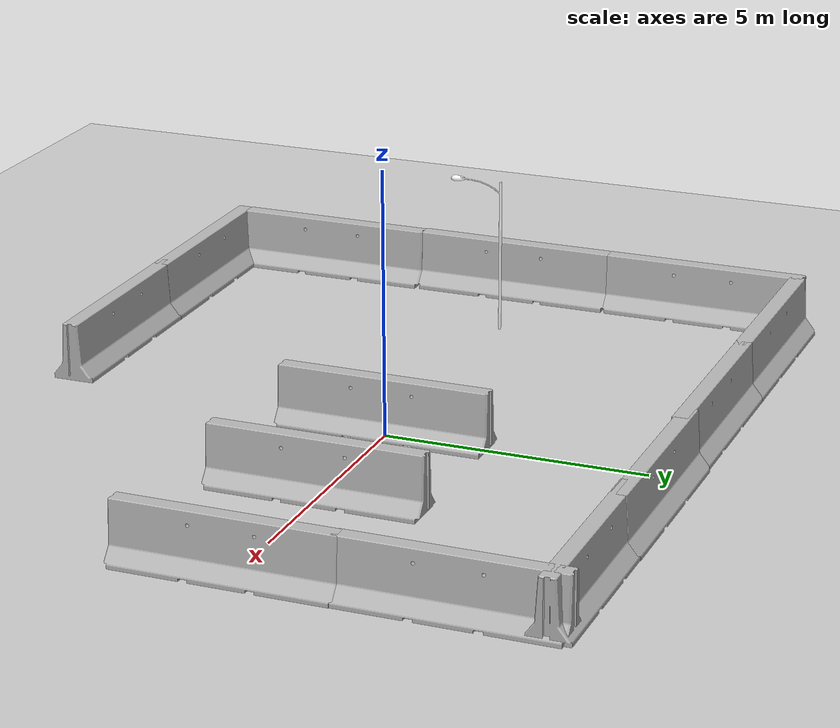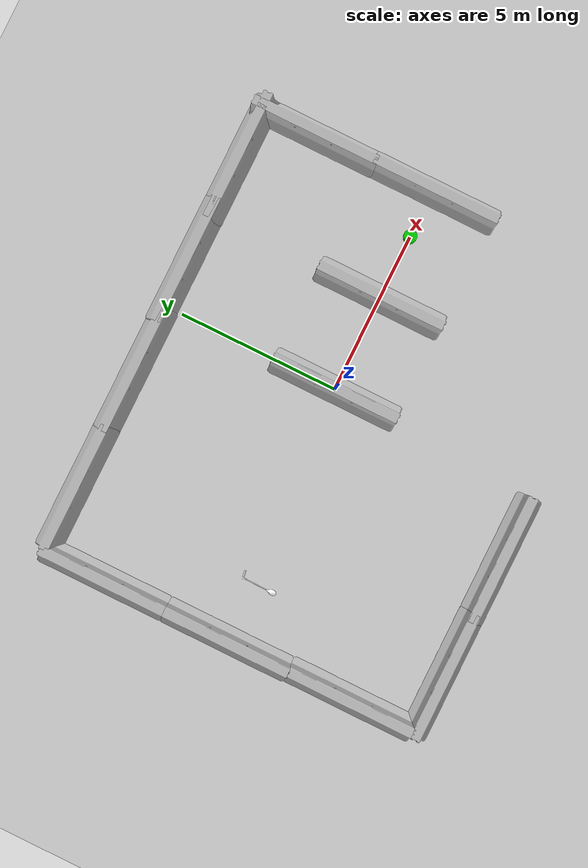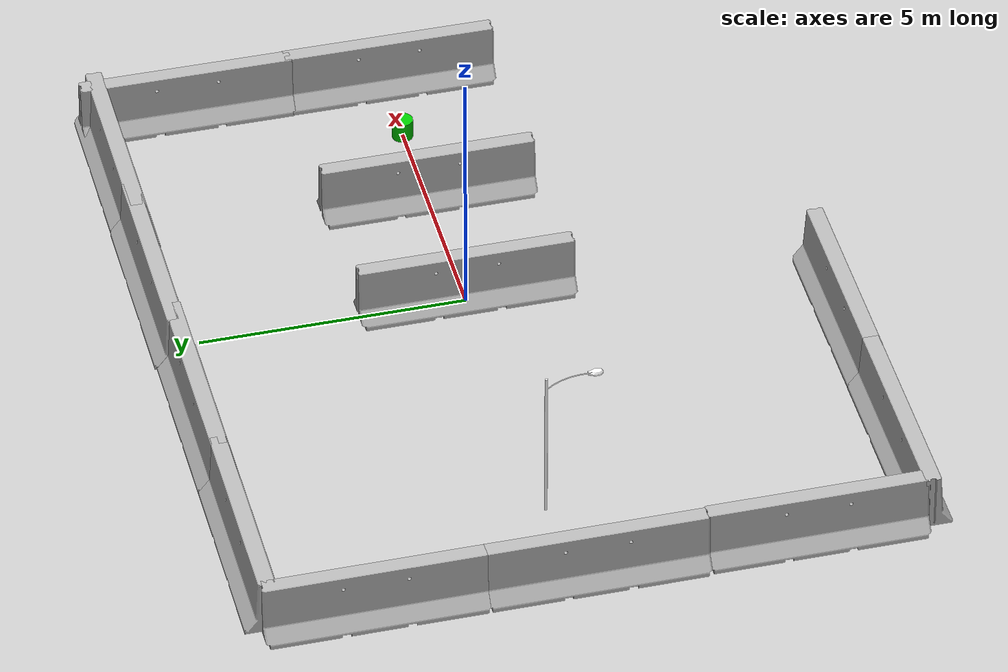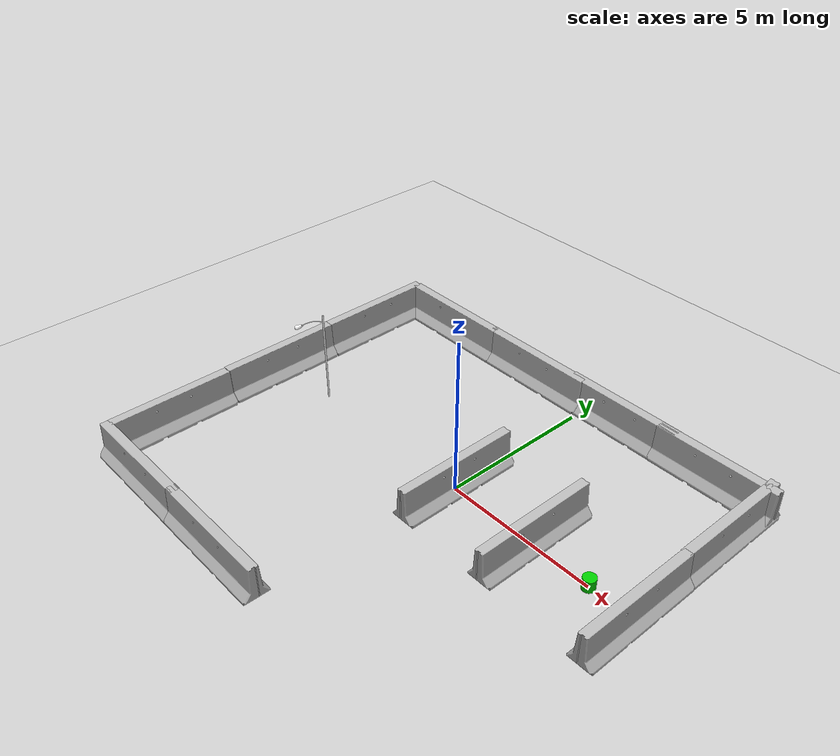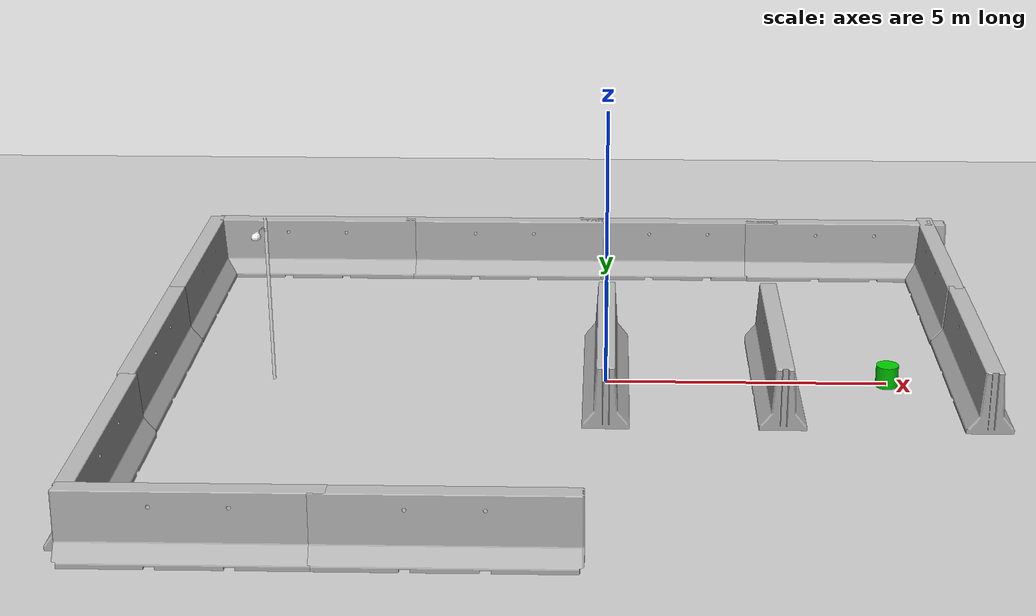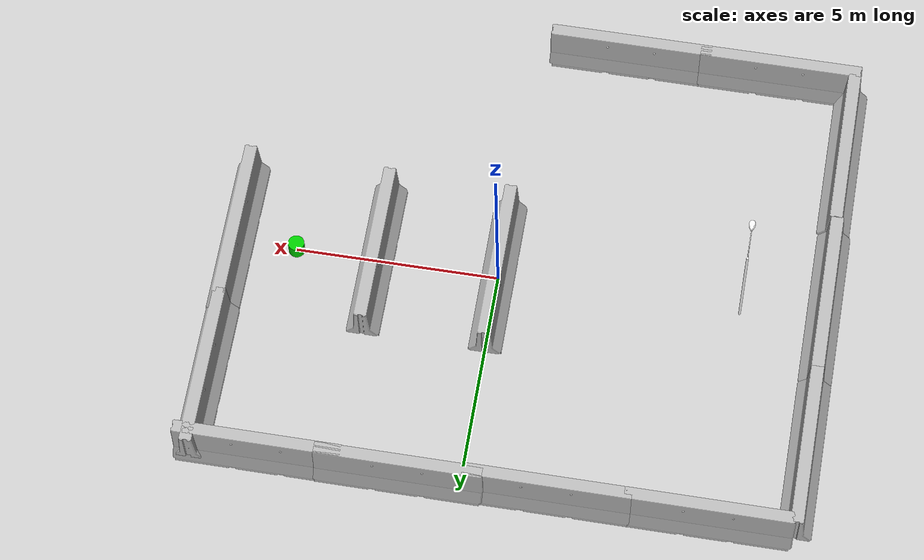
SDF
<sdf version="1.6">
 <world name="default">
  <light name="sun" type="directional">
   <pose>0 0 10 0 -0 0</pose>
   <diffuse>0.8 0.8 0.8 1</diffuse>
   <specular>0.1 0.1 0.1 1</specular>
   <attenuation>
    <range>1000</range>
    <constant>0.9</constant>
    <linear>0.01</linear>
    <quadratic>0.001</quadratic>
   </attenuation>
   <direction>-0.5 0.5 -1</direction>
  </light>
  <model name="ground_plane">
   <static>1</static>
   <link name="link">
    <collision name="collision">
     <geometry><plane><normal>0 0 1</normal><size>100 100</size></plane></geometry>
     <surface><friction><ode><mu>100</mu><mu2>50</mu2></ode></friction></surface>
    </collision>
    <visual name="visual">
     <cast_shadows>0</cast_shadows>
     <geometry><plane><normal>0 0 1</normal><size>100 100</size></plane></geometry>
     <material>
      <script><uri>file://media/materials/scripts/gazebo.material</uri><name>Gazebo/Grey</name></script>
     </material>
    </visual>
   </link>
  </model>
  <gravity>0 0 -9.8</gravity>
  <magnetic_field>6e-06 2.3e-05 -4.2e-05</magnetic_field>
  <atmosphere type="adiabatic"/>
  <physics name="default_physics" default="0" type="ode">
   <max_step_size>0.001</max_step_size>
   <real_time_factor>1</real_time_factor>
   <real_time_update_rate>0</real_time_update_rate>
   <ode>
    <solver><type>quick</type><iters>100</iters><sor>1.0</sor></solver>
    <constraints>
     <cfm>0.0001</cfm>
     <erp>0.2</erp>
     <contact_max_correcting_vel>10.0</contact_max_correcting_vel>
     <contact_surface_layer>0.01</contact_surface_layer>
    </constraints>
   </ode>
  </physics>
  <scene><ambient>0.4 0.4 0.4 1</ambient><background>0.7 0.7 0.7 1</background><shadows>1</shadows></scene>
  <spherical_coordinates>
   <surface_model>EARTH_WGS84</surface_model>
   <latitude_deg>0</latitude_deg>
   <longitude_deg>0</longitude_deg>
   <elevation>0</elevation>
   <heading_deg>0</heading_deg>
  </spherical_coordinates>
  <model name="jersey_barrier">
   <static>1</static>
   <link name="link">
    <visual name="visual">
     <geometry>
      <mesh><uri>model://jersey_barrier/meshes/jersey_barrier.dae</uri><scale>1 1 1</scale></mesh>
     </geometry>
    </visual>
    <collision name="upright">
     <pose>0 0 0.5715 0 -0 0</pose>
     <geometry><box><size>4.06542 0.3063 1.143</size></box></geometry>
    </collision>
    <collision name="base">
     <pose>0 0 0.032258 0 -0 0</pose>
     <geometry><box><size>4.06542 0.8107 0.064516</size></box></geometry>
    </collision>
    <collision name="base2">
     <pose>0 0 0.1 0 -0 0</pose>
     <geometry><box><size>4.06542 0.65 0.1</size></box></geometry>
    </collision>
    <collision name="base3">
     <pose>0 0 0.2 0 -0 0</pose>
     <geometry><box><size>4.06542 0.5 0.1</size></box></geometry>
    </collision>
    <collision name="left-angle">
     <pose>0 -0.224 0.2401 0.9 -0 0</pose>
     <geometry><box><size>4.06542 0.5 0.064516</size></box></geometry>
    </collision>
    <collision name="right-angle">
     <pose>0 0.224 0.2401 -0.9 0 0</pose>
     <geometry><box><size>4.06542 0.5 0.064516</size></box></geometry>
    </collision>
   </link>
   <pose>-5.90799 5.50409 0 0 -0 0</pose>
  </model>
  <model name="jersey_barrier_clone">
   <static>1</static>
   <link name="link">
    <visual name="visual">
     <geometry>
      <mesh><uri>model://jersey_barrier/meshes/jersey_barrier.dae</uri><scale>1 1 1</scale></mesh>
     </geometry>
    </visual>
    <collision name="upright">
     <pose>0 0 0.5715 0 -0 0</pose>
     <geometry><box><size>4.06542 0.3063 1.143</size></box></geometry>
    </collision>
    <collision name="base">
     <pose>0 0 0.032258 0 -0 0</pose>
     <geometry><box><size>4.06542 0.8107 0.064516</size></box></geometry>
    </collision>
    <collision name="base2">
     <pose>0 0 0.1 0 -0 0</pose>
     <geometry><box><size>4.06542 0.65 0.1</size></box></geometry>
    </collision>
    <collision name="base3">
     <pose>0 0 0.2 0 -0 0</pose>
     <geometry><box><size>4.06542 0.5 0.1</size></box></geometry>
    </collision>
    <collision name="left-angle">
     <pose>0 -0.224 0.2401 0.9 -0 0</pose>
     <geometry><box><size>4.06542 0.5 0.064516</size></box></geometry>
    </collision>
    <collision name="right-angle">
     <pose>0 0.224 0.2401 -0.9 0 0</pose>
     <geometry><box><size>4.06542 0.5 0.064516</size></box></geometry>
    </collision>
   </link>
   <pose>-2.08752 5.50594 0 0 -0 0</pose>
  </model>
  <model name="jersey_barrier_clone_clone">
   <static>1</static>
   <link name="link">
    <visual name="visual">
     <geometry>
      <mesh><uri>model://jersey_barrier/meshes/jersey_barrier.dae</uri><scale>1 1 1</scale></mesh>
     </geometry>
    </visual>
    <collision name="upright">
     <pose>0 0 0.5715 0 -0 0</pose>
     <geometry><box><size>4.06542 0.3063 1.143</size></box></geometry>
    </collision>
    <collision name="base">
     <pose>0 0 0.032258 0 -0 0</pose>
     <geometry><box><size>4.06542 0.8107 0.064516</size></box></geometry>
    </collision>
    <collision name="base2">
     <pose>0 0 0.1 0 -0 0</pose>
     <geometry><box><size>4.06542 0.65 0.1</size></box></geometry>
    </collision>
    <collision name="base3">
     <pose>0 0 0.2 0 -0 0</pose>
     <geometry><box><size>4.06542 0.5 0.1</size></box></geometry>
    </collision>
    <collision name="left-angle">
     <pose>0 -0.224 0.2401 0.9 -0 0</pose>
     <geometry><box><size>4.06542 0.5 0.064516</size></box></geometry>
    </collision>
    <collision name="right-angle">
     <pose>0 0.224 0.2401 -0.9 0 0</pose>
     <geometry><box><size>4.06542 0.5 0.064516</size></box></geometry>
    </collision>
   </link>
   <pose>-7.97 3.59466 0 0 0 -1.5713</pose>
  </model>
  <model name="jersey_barrier_clone_clone_clone">
   <static>1</static>
   <link name="link">
    <visual name="visual">
     <geometry>
      <mesh><uri>model://jersey_barrier/meshes/jersey_barrier.dae</uri><scale>1 1 1</scale></mesh>
     </geometry>
    </visual>
    <collision name="upright">
     <pose>0 0 0.5715 0 -0 0</pose>
     <geometry><box><size>4.06542 0.3063 1.143</size></box></geometry>
    </collision>
    <collision name="base">
     <pose>0 0 0.032258 0 -0 0</pose>
     <geometry><box><size>4.06542 0.8107 0.064516</size></box></geometry>
    </collision>
    <collision name="base2">
     <pose>0 0 0.1 0 -0 0</pose>
     <geometry><box><size>4.06542 0.65 0.1</size></box></geometry>
    </collision>
    <collision name="base3">
     <pose>0 0 0.2 0 -0 0</pose>
     <geometry><box><size>4.06542 0.5 0.1</size></box></geometry>
    </collision>
    <collision name="left-angle">
     <pose>0 -0.224 0.2401 0.9 -0 0</pose>
     <geometry><box><size>4.06542 0.5 0.064516</size></box></geometry>
    </collision>
    <collision name="right-angle">
     <pose>0 0.224 0.2401 -0.9 0 0</pose>
     <geometry><box><size>4.06542 0.5 0.064516</size></box></geometry>
    </collision>
   </link>
   <pose>-7.97138 -0.407457 0 0 0 -1.5713</pose>
  </model>
  <model name="jersey_barrier_clone_clone_clone_clone">
   <static>1</static>
   <link name="link">
    <visual name="visual">
     <geometry>
      <mesh><uri>model://jersey_barrier/meshes/jersey_barrier.dae</uri><scale>1 1 1</scale></mesh>
     </geometry>
    </visual>
    <collision name="upright">
     <pose>0 0 0.5715 0 -0 0</pose>
     <geometry><box><size>4.06542 0.3063 1.143</size></box></geometry>
    </collision>
    <collision name="base">
     <pose>0 0 0.032258 0 -0 0</pose>
     <geometry><box><size>4.06542 0.8107 0.064516</size></box></geometry>
    </collision>
    <collision name="base2">
     <pose>0 0 0.1 0 -0 0</pose>
     <geometry><box><size>4.06542 0.65 0.1</size></box></geometry>
    </collision>
    <collision name="base3">
     <pose>0 0 0.2 0 -0 0</pose>
     <geometry><box><size>4.06542 0.5 0.1</size></box></geometry>
    </collision>
    <collision name="left-angle">
     <pose>0 -0.224 0.2401 0.9 -0 0</pose>
     <geometry><box><size>4.06542 0.5 0.064516</size></box></geometry>
    </collision>
    <collision name="right-angle">
     <pose>0 0.224 0.2401 -0.9 0 0</pose>
     <geometry><box><size>4.06542 0.5 0.064516</size></box></geometry>
    </collision>
   </link>
   <pose>-7.93755 -4.43527 0 0 0 -1.5713</pose>
  </model>
  <model name="jersey_barrier_clone_0">
   <static>1</static>
   <link name="link">
    <visual name="visual">
     <geometry>
      <mesh><uri>model://jersey_barrier/meshes/jersey_barrier.dae</uri><scale>1 1 1</scale></mesh>
     </geometry>
    </visual>
    <collision name="upright">
     <pose>0 0 0.5715 0 -0 0</pose>
     <geometry><box><size>4.06542 0.3063 1.143</size></box></geometry>
    </collision>
    <collision name="base">
     <pose>0 0 0.032258 0 -0 0</pose>
     <geometry><box><size>4.06542 0.8107 0.064516</size></box></geometry>
    </collision>
    <collision name="base2">
     <pose>0 0 0.1 0 -0 0</pose>
     <geometry><box><size>4.06542 0.65 0.1</size></box></geometry>
    </collision>
    <collision name="base3">
     <pose>0 0 0.2 0 -0 0</pose>
     <geometry><box><size>4.06542 0.5 0.1</size></box></geometry>
    </collision>
    <collision name="left-angle">
     <pose>0 -0.224 0.2401 0.9 -0 0</pose>
     <geometry><box><size>4.06542 0.5 0.064516</size></box></geometry>
    </collision>
    <collision name="right-angle">
     <pose>0 0.224 0.2401 -0.9 0 0</pose>
     <geometry><box><size>4.06542 0.5 0.064516</size></box></geometry>
    </collision>
   </link>
   <pose>-6.06591 -6.53282 0 0 -0 0</pose>
  </model>
  <model name="jersey_barrier_clone_1">
   <static>1</static>
   <link name="link">
    <visual name="visual">
     <geometry>
      <mesh><uri>model://jersey_barrier/meshes/jersey_barrier.dae</uri><scale>1 1 1</scale></mesh>
     </geometry>
    </visual>
    <collision name="upright">
     <pose>0 0 0.5715 0 -0 0</pose>
     <geometry><box><size>4.06542 0.3063 1.143</size></box></geometry>
    </collision>
    <collision name="base">
     <pose>0 0 0.032258 0 -0 0</pose>
     <geometry><box><size>4.06542 0.8107 0.064516</size></box></geometry>
    </collision>
    <collision name="base2">
     <pose>0 0 0.1 0 -0 0</pose>
     <geometry><box><size>4.06542 0.65 0.1</size></box></geometry>
    </collision>
    <collision name="base3">
     <pose>0 0 0.2 0 -0 0</pose>
     <geometry><box><size>4.06542 0.5 0.1</size></box></geometry>
    </collision>
    <collision name="left-angle">
     <pose>0 -0.224 0.2401 0.9 -0 0</pose>
     <geometry><box><size>4.06542 0.5 0.064516</size></box></geometry>
    </collision>
    <collision name="right-angle">
     <pose>0 0.224 0.2401 -0.9 0 0</pose>
     <geometry><box><size>4.06542 0.5 0.064516</size></box></geometry>
    </collision>
   </link>
   <pose>-2.3248 -6.5364 0 0 -0 0</pose>
  </model>
  <model name="jersey_barrier_clone_2">
   <static>1</static>
   <link name="link">
    <visual name="visual">
     <geometry>
      <mesh><uri>model://jersey_barrier/meshes/jersey_barrier.dae</uri><scale>1 1 1</scale></mesh>
     </geometry>
    </visual>
    <collision name="upright">
     <pose>0 0 0.5715 0 -0 0</pose>
     <geometry><box><size>4.06542 0.3063 1.143</size></box></geometry>
    </collision>
    <collision name="base">
     <pose>0 0 0.032258 0 -0 0</pose>
     <geometry><box><size>4.06542 0.8107 0.064516</size></box></geometry>
    </collision>
    <collision name="base2">
     <pose>0 0 0.1 0 -0 0</pose>
     <geometry><box><size>4.06542 0.65 0.1</size></box></geometry>
    </collision>
    <collision name="base3">
     <pose>0 0 0.2 0 -0 0</pose>
     <geometry><box><size>4.06542 0.5 0.1</size></box></geometry>
    </collision>
    <collision name="left-angle">
     <pose>0 -0.224 0.2401 0.9 -0 0</pose>
     <geometry><box><size>4.06542 0.5 0.064516</size></box></geometry>
    </collision>
    <collision name="right-angle">
     <pose>0 0.224 0.2401 -0.9 0 0</pose>
     <geometry><box><size>4.06542 0.5 0.064516</size></box></geometry>
    </collision>
   </link>
   <pose>1.44512 5.54075 0 0 -0 0</pose>
  </model>
  <model name="jersey_barrier_clone_2_clone">
   <static>1</static>
   <link name="link">
    <visual name="visual">
     <geometry>
      <mesh><uri>model://jersey_barrier/meshes/jersey_barrier.dae</uri><scale>1 1 1</scale></mesh>
     </geometry>
    </visual>
    <collision name="upright">
     <pose>0 0 0.5715 0 -0 0</pose>
     <geometry><box><size>4.06542 0.3063 1.143</size></box></geometry>
    </collision>
    <collision name="base">
     <pose>0 0 0.032258 0 -0 0</pose>
     <geometry><box><size>4.06542 0.8107 0.064516</size></box></geometry>
    </collision>
    <collision name="base2">
     <pose>0 0 0.1 0 -0 0</pose>
     <geometry><box><size>4.06542 0.65 0.1</size></box></geometry>
    </collision>
    <collision name="base3">
     <pose>0 0 0.2 0 -0 0</pose>
     <geometry><box><size>4.06542 0.5 0.1</size></box></geometry>
    </collision>
    <collision name="left-angle">
     <pose>0 -0.224 0.2401 0.9 -0 0</pose>
     <geometry><box><size>4.06542 0.5 0.064516</size></box></geometry>
    </collision>
    <collision name="right-angle">
     <pose>0 0.224 0.2401 -0.9 0 0</pose>
     <geometry><box><size>4.06542 0.5 0.064516</size></box></geometry>
    </collision>
   </link>
   <pose>4.81438 5.52885 0 0 -0 0</pose>
  </model>
  <model name="jersey_barrier_clone_clone_clone_clone_clone">
   <static>1</static>
   <link name="link">
    <visual name="visual">
     <geometry>
      <mesh><uri>model://jersey_barrier/meshes/jersey_barrier.dae</uri><scale>1 1 1</scale></mesh>
     </geometry>
    </visual>
    <collision name="upright">
     <pose>0 0 0.5715 0 -0 0</pose>
     <geometry><box><size>4.06542 0.3063 1.143</size></box></geometry>
    </collision>
    <collision name="base">
     <pose>0 0 0.032258 0 -0 0</pose>
     <geometry><box><size>4.06542 0.8107 0.064516</size></box></geometry>
    </collision>
    <collision name="base2">
     <pose>0 0 0.1 0 -0 0</pose>
     <geometry><box><size>4.06542 0.65 0.1</size></box></geometry>
    </collision>
    <collision name="base3">
     <pose>0 0 0.2 0 -0 0</pose>
     <geometry><box><size>4.06542 0.5 0.1</size></box></geometry>
    </collision>
    <collision name="left-angle">
     <pose>0 -0.224 0.2401 0.9 -0 0</pose>
     <geometry><box><size>4.06542 0.5 0.064516</size></box></geometry>
    </collision>
    <collision name="right-angle">
     <pose>0 0.224 0.2401 -0.9 0 0</pose>
     <geometry><box><size>4.06542 0.5 0.064516</size></box></geometry>
    </collision>
   </link>
   <pose>3 0 0 0 0 -1.5713</pose>
  </model>
  <model name="jersey_barrier_clone_clone_clone_clone_clone_0">
   <static>1</static>
   <link name="link">
    <visual name="visual">
     <geometry>
      <mesh><uri>model://jersey_barrier/meshes/jersey_barrier.dae</uri><scale>1 1 1</scale></mesh>
     </geometry>
    </visual>
    <collision name="upright">
     <pose>0 0 0.5715 0 -0 0</pose>
     <geometry><box><size>4.06542 0.3063 1.143</size></box></geometry>
    </collision>
    <collision name="base">
     <pose>0 0 0.032258 0 -0 0</pose>
     <geometry><box><size>4.06542 0.8107 0.064516</size></box></geometry>
    </collision>
    <collision name="base2">
     <pose>0 0 0.1 0 -0 0</pose>
     <geometry><box><size>4.06542 0.65 0.1</size></box></geometry>
    </collision>
    <collision name="base3">
     <pose>0 0 0.2 0 -0 0</pose>
     <geometry><box><size>4.06542 0.5 0.1</size></box></geometry>
    </collision>
    <collision name="left-angle">
     <pose>0 -0.224 0.2401 0.9 -0 0</pose>
     <geometry><box><size>4.06542 0.5 0.064516</size></box></geometry>
    </collision>
    <collision name="right-angle">
     <pose>0 0.224 0.2401 -0.9 0 0</pose>
     <geometry><box><size>4.06542 0.5 0.064516</size></box></geometry>
    </collision>
   </link>
   <pose>0 0 0 0 0 -1.5713</pose>
  </model>
  <model name="jersey_barrier_clone_clone_clone_clone_clone_1">
   <static>1</static>
   <link name="link">
    <visual name="visual">
     <geometry>
      <mesh><uri>model://jersey_barrier/meshes/jersey_barrier.dae</uri><scale>1 1 1</scale></mesh>
     </geometry>
    </visual>
    <collision name="upright">
     <pose>0 0 0.5715 0 -0 0</pose>
     <geometry><box><size>4.06542 0.3063 1.143</size></box></geometry>
    </collision>
    <collision name="base">
     <pose>0 0 0.032258 0 -0 0</pose>
     <geometry><box><size>4.06542 0.8107 0.064516</size></box></geometry>
    </collision>
    <collision name="base2">
     <pose>0 0 0.1 0 -0 0</pose>
     <geometry><box><size>4.06542 0.65 0.1</size></box></geometry>
    </collision>
    <collision name="base3">
     <pose>0 0 0.2 0 -0 0</pose>
     <geometry><box><size>4.06542 0.5 0.1</size></box></geometry>
    </collision>
    <collision name="left-angle">
     <pose>0 -0.224 0.2401 0.9 -0 0</pose>
     <geometry><box><size>4.06542 0.5 0.064516</size></box></geometry>
    </collision>
    <collision name="right-angle">
     <pose>0 0.224 0.2401 -0.9 0 0</pose>
     <geometry><box><size>4.06542 0.5 0.064516</size></box></geometry>
    </collision>
   </link>
   <pose>6.46391 3.83144 0 0 0 -1.5713</pose>
  </model>
  <model name="jersey_barrier_clone_clone_clone_clone_clone_2">
   <static>1</static>
   <link name="link">
    <visual name="visual">
     <geometry>
      <mesh><uri>model://jersey_barrier/meshes/jersey_barrier.dae</uri><scale>1 1 1</scale></mesh>
     </geometry>
    </visual>
    <collision name="upright">
     <pose>0 0 0.5715 0 -0 0</pose>
     <geometry><box><size>4.06542 0.3063 1.143</size></box></geometry>
    </collision>
    <collision name="base">
     <pose>0 0 0.032258 0 -0 0</pose>
     <geometry><box><size>4.06542 0.8107 0.064516</size></box></geometry>
    </collision>
    <collision name="base2">
     <pose>0 0 0.1 0 -0 0</pose>
     <geometry><box><size>4.06542 0.65 0.1</size></box></geometry>
    </collision>
    <collision name="base3">
     <pose>0 0 0.2 0 -0 0</pose>
     <geometry><box><size>4.06542 0.5 0.1</size></box></geometry>
    </collision>
    <collision name="left-angle">
     <pose>0 -0.224 0.2401 0.9 -0 0</pose>
     <geometry><box><size>4.06542 0.5 0.064516</size></box></geometry>
    </collision>
    <collision name="right-angle">
     <pose>0 0.224 0.2401 -0.9 0 0</pose>
     <geometry><box><size>4.06542 0.5 0.064516</size></box></geometry>
    </collision>
   </link>
   <pose>6.47587 -0.063104 0 0 0 -1.5713</pose>
  </model>
  <model name="Lamp_Post_red">
   <link name="link">
    <inertial>
     <mass>1</mass>
     <inertia><ixx>1</ixx><ixy>0</ixy><ixz>0</ixz><iyy>1</iyy><iyz>0</iyz><izz>1</izz></inertia>
    </inertial>
    <visual name="visual">
     <geometry><mesh><uri>model://lamp_post/meshes/lamp_post.dae</uri><scale>1 1 1</scale></mesh></geometry>
     <material>
      <shader type="vertex"><normal_map>__default__</normal_map></shader>
      <ambient>0.99 0 0 0</ambient>
      <diffuse>1 1 1 1</diffuse>
      <specular>0 0 0 1</specular>
      <emissive>0 0 0 1</emissive>
      <script><name>ModelPreview_1::link::visual_MATERIAL_</name><uri>__default__</uri></script>
     </material>
    </visual>
    <collision name="collision">
     <geometry><mesh><uri>model://lamp_post/meshes/lamp_post.dae</uri><scale>1 1 1</scale></mesh></geometry>
     <surface>
      <friction>
       <ode><mu>1</mu><mu2>1</mu2><fdir1>0 0 0</fdir1><slip1>0</slip1><slip2>0</slip2></ode>
       <torsional>
        <coefficient>1</coefficient>
        <patch_radius>0</patch_radius>
        <surface_radius>0</surface_radius>
        <use_patch_radius>1</use_patch_radius>
        <ode><slip>0</slip></ode>
       </torsional>
      </friction>
      <bounce><restitution_coefficient>0</restitution_coefficient><threshold>1e+06</threshold></bounce>
      <contact>
       <collide_without_contact>0</collide_without_contact>
       <collide_without_contact_bitmask>1</collide_without_contact_bitmask>
       <collide_bitmask>1</collide_bitmask>
       <ode>
        <soft_cfm>0</soft_cfm>
        <soft_erp>0.2</soft_erp>
        <kp>1e+13</kp>
        <kd>1</kd>
        <max_vel>0.01</max_vel>
        <min_depth>0</min_depth>
       </ode>
       <bullet>
        <split_impulse>1</split_impulse>
        <split_impulse_penetration_threshold>-0.01</split_impulse_penetration_threshold>
        <soft_cfm>0</soft_cfm>
        <soft_erp>0.2</soft_erp>
        <kp>1e+13</kp>
        <kd>1</kd>
       </bullet>
      </contact>
     </surface>
    </collision>
   </link>
   <static>1</static>
   <pose>-5.95088 -0.01329 0 0 -0 0</pose>
  </model>
  <model name="goal_marker">
   <static>1</static>
   <pose>5.0 0.0 0 0 0 0</pose>
   <link name="link">
    <visual name="visual">
     <geometry><cylinder><radius>0.2</radius><length>0.75</length></cylinder></geometry>
     <material><ambient>0 0.8 0 1</ambient><diffuse>0 0.8 0 1</diffuse><specular>0 0.1 0 1</specular></material>
    </visual>
   </link>
  </model>
  <light name="user_spot_light_0" type="spot">
   <pose>-6.13186 -0.973025 1 0 -0 0</pose>
   <diffuse>0.5 0.5 0.5 1</diffuse>
   <specular>0.1 0.1 0.1 1</specular>
   <direction>0 0 -1</direction>
   <attenuation>
    <range>20</range>
    <constant>0.5</constant>
    <linear>0.01</linear>
    <quadratic>0.001</quadratic>
   </attenuation>
   <cast_shadows>0</cast_shadows>
   <spot><inner_angle>0.6</inner_angle><outer_angle>1</outer_angle><falloff>1</falloff></spot>
  </light>
 </world>
</sdf>
